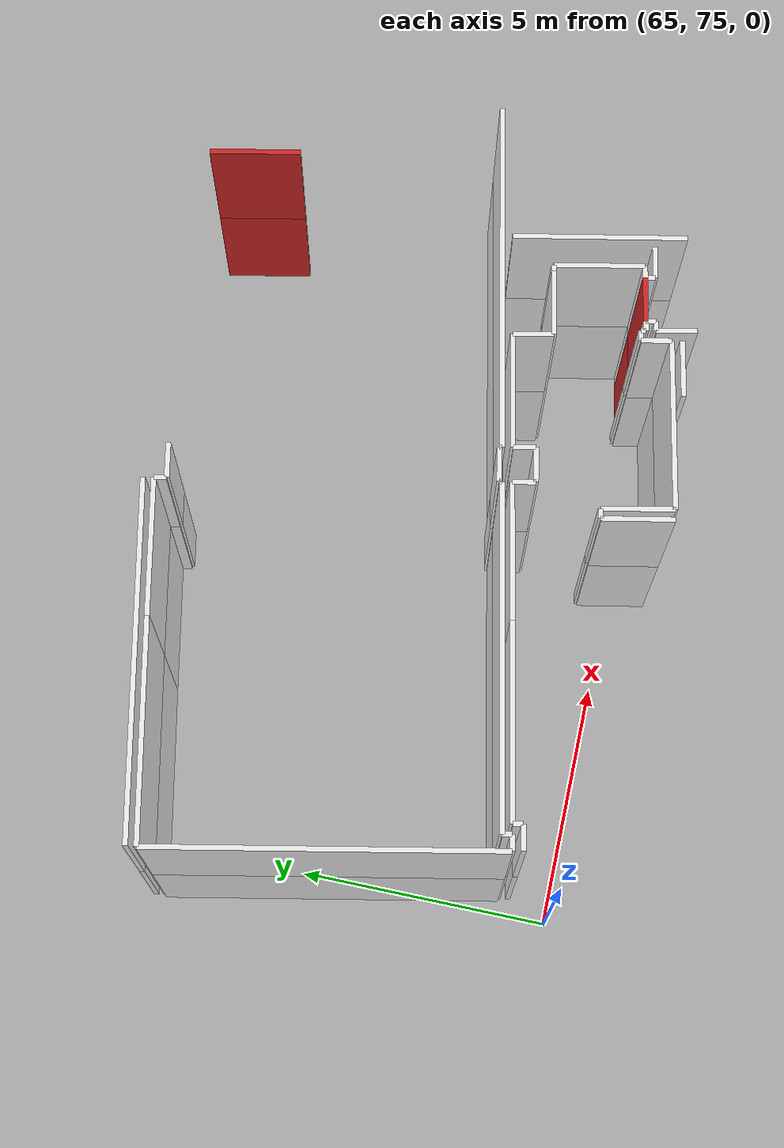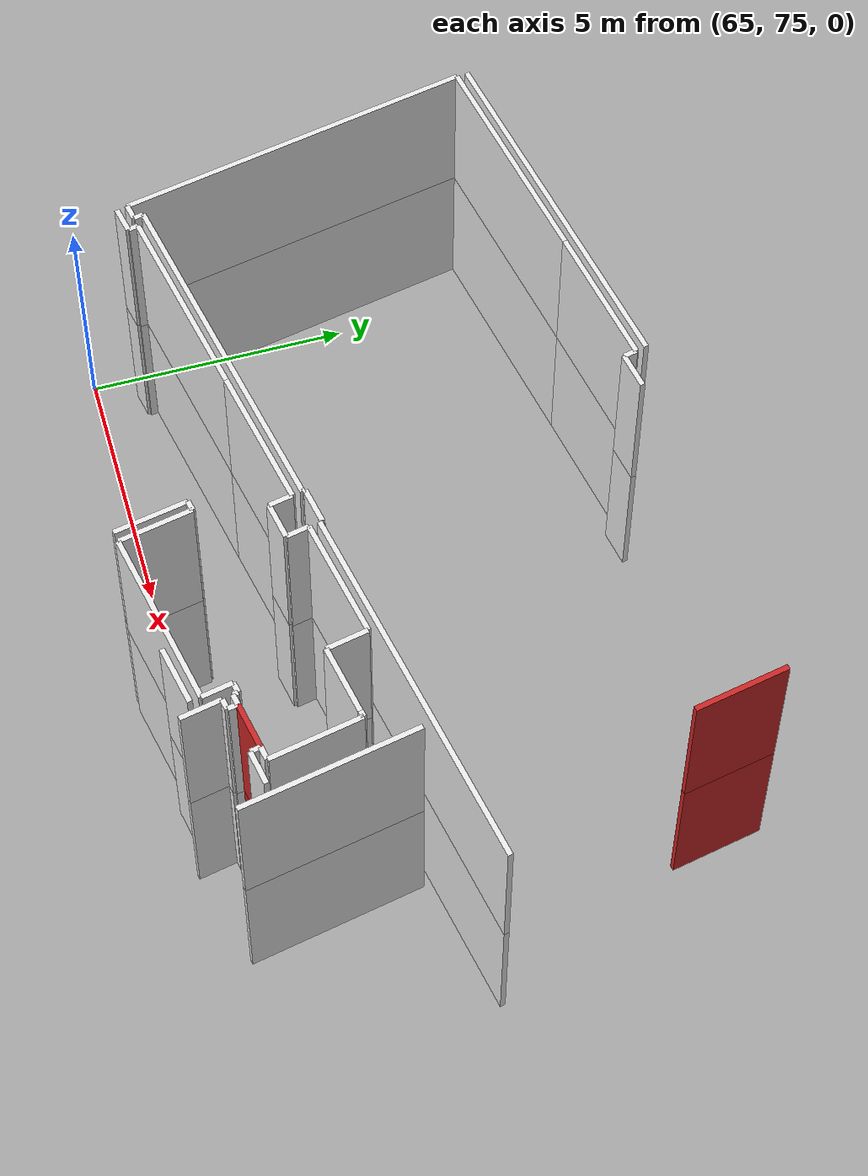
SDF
<sdf version="1.6">
 <world name="default">
  <model name="wall_77.9_83.7_1.5">
   <static>true</static>
   <pose>77.88500000000931 83.6699999999255 1.5 0 0 -1.3744936626731843</pose>
   <link name="link">
    <visual name="visual">
     <geometry><box><size>1.7944637079631676 0.1 3</size></box></geometry>
     <material>
      <script><uri>file://media/materials/scripts/gazebo.material</uri><name>Gazebo/Red</name></script>
     </material>
    </visual>
    <collision name="collision"><geometry><box><size>1.7944637079631676 0.1 3</size></box></geometry></collision>
   </link>
  </model>
  <model name="wall_76.4_75.6_1.5">
   <static>true</static>
   <pose>76.39000000001397 75.57500000018626 1.5 0 0 0.19083110263865674</pose>
   <link name="link">
    <visual name="visual">
     <geometry><box><size>0.8962700485807075 0.1 3</size></box></geometry>
     <material>
      <script><uri>file://media/materials/scripts/gazebo.material</uri><name>Gazebo/Red</name></script>
     </material>
    </visual>
    <collision name="collision"><geometry><box><size>0.8962700485807075 0.1 3</size></box></geometry></collision>
   </link>
  </model>
  <model name="wall_77.9_83.7_4.5">
   <static>true</static>
   <pose>77.88500000000931 83.6699999999255 4.5 0 0 -1.3744936626731843</pose>
   <link name="link">
    <visual name="visual">
     <geometry><box><size>1.7944637079631676 0.1 3</size></box></geometry>
     <material>
      <script><uri>file://media/materials/scripts/gazebo.material</uri><name>Gazebo/Red</name></script>
     </material>
    </visual>
    <collision name="collision"><geometry><box><size>1.7944637079631676 0.1 3</size></box></geometry></collision>
   </link>
  </model>
  <model name="wall_76.4_75.6_4.5">
   <static>true</static>
   <pose>76.39000000001397 75.57500000018626 4.5 0 0 0.19083110263865674</pose>
   <link name="link">
    <visual name="visual">
     <geometry><box><size>0.8962700485807075 0.1 3</size></box></geometry>
     <material>
      <script><uri>file://media/materials/scripts/gazebo.material</uri><name>Gazebo/Red</name></script>
     </material>
    </visual>
    <collision name="collision"><geometry><box><size>0.8962700485807075 0.1 3</size></box></geometry></collision>
   </link>
  </model>
  <model name="wall_77.5_76.7_1.5">
   <static>true</static>
   <pose>77.5 76.67500000004657 1.5 0 0 1.7653199818507113</pose>
   <link name="link">
    <visual name="visual">
     <geometry><box><size>3.414395993534876 0.1 3</size></box></geometry>
     <material>
      <script><uri>file://media/materials/scripts/gazebo.material</uri><name>Gazebo/White</name></script>
     </material>
    </visual>
    <collision name="collision"><geometry><box><size>3.414395993534876 0.1 3</size></box></geometry></collision>
   </link>
  </model>
  <model name="wall_67.4_83.5_1.5">
   <static>true</static>
   <pose>67.40499999999884 83.54000000003725 1.5 0 0 0.1954353271778743</pose>
   <link name="link">
    <visual name="visual">
     <geometry><box><size>7.003320641070759 0.1 3</size></box></geometry>
     <material>
      <script><uri>file://media/materials/scripts/gazebo.material</uri><name>Gazebo/White</name></script>
     </material>
    </visual>
    <collision name="collision"><geometry><box><size>7.003320641070759 0.1 3</size></box></geometry></collision>
   </link>
  </model>
  <model name="wall_71.3_83.8_1.5">
   <static>true</static>
   <pose>71.26999999998952 83.84499999997206 1.5 0 0 -2.9526954722081817</pose>
   <link name="link">
    <visual name="visual">
     <geometry><box><size>0.6923149572864328 0.1 3</size></box></geometry>
     <material>
      <script><uri>file://media/materials/scripts/gazebo.material</uri><name>Gazebo/White</name></script>
     </material>
    </visual>
    <collision name="collision"><geometry><box><size>0.6923149572864328 0.1 3</size></box></geometry></collision>
   </link>
  </model>
  <model name="wall_70.9_83.9_1.5">
   <static>true</static>
   <pose>70.90499999999884 83.89999999990687 1.5 0 0 1.7761917157522207</pose>
   <link name="link">
    <visual name="visual">
     <geometry><box><size>0.24515301365907008 0.1 3</size></box></geometry>
     <material>
      <script><uri>file://media/materials/scripts/gazebo.material</uri><name>Gazebo/White</name></script>
     </material>
    </visual>
    <collision name="collision"><geometry><box><size>0.24515301365907008 0.1 3</size></box></geometry></collision>
   </link>
  </model>
  <model name="wall_69.5_83.8_1.5">
   <static>true</static>
   <pose>69.54999999998836 83.76000000000931 1.5 0 0 -2.948538600466728</pose>
   <link name="link">
    <visual name="visual">
     <geometry><box><size>2.7103505308710134 0.1 3</size></box></geometry>
     <material>
      <script><uri>file://media/materials/scripts/gazebo.material</uri><name>Gazebo/White</name></script>
     </material>
    </visual>
    <collision name="collision"><geometry><box><size>2.7103505308710134 0.1 3</size></box></geometry></collision>
   </link>
  </model>
  <model name="wall_66.1_83.1_1.5">
   <static>true</static>
   <pose>66.10999999998603 83.0800000000745 1.5 0 0 -2.9451086705483704</pose>
   <link name="link">
    <visual name="visual">
     <geometry><box><size>4.30278979262453 0.1 3</size></box></geometry>
     <material>
      <script><uri>file://media/materials/scripts/gazebo.material</uri><name>Gazebo/White</name></script>
     </material>
    </visual>
    <collision name="collision"><geometry><box><size>4.30278979262453 0.1 3</size></box></geometry></collision>
   </link>
  </model>
  <model name="wall_64.7_79.3_1.5">
   <static>true</static>
   <pose>64.66500000000815 79.34000000008382 1.5 0 0 -1.3731111637109774</pose>
   <link name="link">
    <visual name="visual">
     <geometry><box><size>6.771890430431879 0.1 3</size></box></geometry>
     <material>
      <script><uri>file://media/materials/scripts/gazebo.material</uri><name>Gazebo/White</name></script>
     </material>
    </visual>
    <collision name="collision"><geometry><box><size>6.771890430431879 0.1 3</size></box></geometry></collision>
   </link>
  </model>
  <model name="wall_65.5_76.1_1.5">
   <static>true</static>
   <pose>65.48000000001048 76.05000000004657 1.5 0 0 0.19739556003644376</pose>
   <link name="link">
    <visual name="visual">
     <geometry><box><size>0.30594117081511046 0.1 3</size></box></geometry>
     <material>
      <script><uri>file://media/materials/scripts/gazebo.material</uri><name>Gazebo/White</name></script>
     </material>
    </visual>
    <collision name="collision"><geometry><box><size>0.30594117081511046 0.1 3</size></box></geometry></collision>
   </link>
  </model>
  <model name="wall_65.6_76.2_1.5">
   <static>true</static>
   <pose>65.61000000001513 76.1699999999255 1.5 0 0 1.7894652729085172</pose>
   <link name="link">
    <visual name="visual">
     <geometry><box><size>0.18439088885038563 0.1 3</size></box></geometry>
     <material>
      <script><uri>file://media/materials/scripts/gazebo.material</uri><name>Gazebo/White</name></script>
     </material>
    </visual>
    <collision name="collision"><geometry><box><size>0.18439088885038563 0.1 3</size></box></geometry></collision>
   </link>
  </model>
  <model name="wall_68.9_76.9_1.5">
   <static>true</static>
   <pose>68.88000000000466 76.91499999980442 1.5 0 0 0.19651862351580723</pose>
   <link name="link">
    <visual name="visual">
     <geometry><box><size>6.709135562767745 0.1 3</size></box></geometry>
     <material>
      <script><uri>file://media/materials/scripts/gazebo.material</uri><name>Gazebo/White</name></script>
     </material>
    </visual>
    <collision name="collision"><geometry><box><size>6.709135562767745 0.1 3</size></box></geometry></collision>
   </link>
  </model>
  <model name="wall_72.2_77.6_1.5">
   <static>true</static>
   <pose>72.16499999997905 77.59499999997206 1.5 0 0 1.7681918857492749</pose>
   <link name="link">
    <visual name="visual">
     <geometry><box><size>0.05099019541172539 0.1 3</size></box></geometry>
     <material>
      <script><uri>file://media/materials/scripts/gazebo.material</uri><name>Gazebo/White</name></script>
     </material>
    </visual>
    <collision name="collision"><geometry><box><size>0.05099019541172539 0.1 3</size></box></geometry></collision>
   </link>
  </model>
  <model name="wall_72.5_77.7_1.5">
   <static>true</static>
   <pose>72.5 77.68500000005588 1.5 0 0 0.18889718070517353</pose>
   <link name="link">
    <visual name="visual">
     <geometry><box><size>0.6923149572561651 0.1 3</size></box></geometry>
     <material>
      <script><uri>file://media/materials/scripts/gazebo.material</uri><name>Gazebo/White</name></script>
     </material>
    </visual>
    <collision name="collision"><geometry><box><size>0.6923149572561651 0.1 3</size></box></geometry></collision>
   </link>
  </model>
  <model name="wall_72.8_77.7_1.5">
   <static>true</static>
   <pose>72.84500000000116 77.72500000009313 1.5 0 0 -1.3734007671688915</pose>
   <link name="link">
    <visual name="visual">
     <geometry><box><size>0.05099019494369148 0.1 3</size></box></geometry>
     <material>
      <script><uri>file://media/materials/scripts/gazebo.material</uri><name>Gazebo/White</name></script>
     </material>
    </visual>
    <collision name="collision"><geometry><box><size>0.05099019494369148 0.1 3</size></box></geometry></collision>
   </link>
  </model>
  <model name="wall_76.3_78.4_1.5">
   <static>true</static>
   <pose>76.33999999999651 78.39000000013039 1.5 0 0 0.19519049174249012</pose>
   <link name="link">
    <visual name="visual">
     <geometry><box><size>7.115110680814747 0.1 3</size></box></geometry>
     <material>
      <script><uri>file://media/materials/scripts/gazebo.material</uri><name>Gazebo/White</name></script>
     </material>
    </visual>
    <collision name="collision"><geometry><box><size>7.115110680814747 0.1 3</size></box></geometry></collision>
   </link>
  </model>
  <model name="wall_72.0_74.9_1.5">
   <static>true</static>
   <pose>71.97500000000582 74.9199999999255 1.5 0 0 1.7640078106303387</pose>
   <link name="link">
    <visual name="visual">
     <geometry><box><size>1.4061649973136765 0.1 3</size></box></geometry>
     <material>
      <script><uri>file://media/materials/scripts/gazebo.material</uri><name>Gazebo/White</name></script>
     </material>
    </visual>
    <collision name="collision"><geometry><box><size>1.4061649973136765 0.1 3</size></box></geometry></collision>
   </link>
  </model>
  <model name="wall_71.9_75.6_1.5">
   <static>true</static>
   <pose>71.93500000002678 75.62999999988824 1.5 0 0 0.20749622662047904</pose>
   <link name="link">
    <visual name="visual">
     <geometry><box><size>0.19416487839942884 0.1 3</size></box></geometry>
     <material>
      <script><uri>file://media/materials/scripts/gazebo.material</uri><name>Gazebo/White</name></script>
     </material>
    </visual>
    <collision name="collision"><geometry><box><size>0.19416487839942884 0.1 3</size></box></geometry></collision>
   </link>
  </model>
  <model name="wall_72.2_75.0_1.5">
   <static>true</static>
   <pose>72.1700000000128 74.95999999996275 1.5 0 0 -1.3706152588342921</pose>
   <link name="link">
    <visual name="visual">
     <geometry><box><size>1.408119313011009 0.1 3</size></box></geometry>
     <material>
      <script><uri>file://media/materials/scripts/gazebo.material</uri><name>Gazebo/White</name></script>
     </material>
    </visual>
    <collision name="collision"><geometry><box><size>1.408119313011009 0.1 3</size></box></geometry></collision>
   </link>
  </model>
  <model name="wall_74.0_74.6_1.5">
   <static>true</static>
   <pose>73.98000000001048 74.60000000009313 1.5 0 0 0.19509141650355566</pose>
   <link name="link">
    <visual name="visual">
     <geometry><box><size>3.404585143650806 0.1 3</size></box></geometry>
     <material>
      <script><uri>file://media/materials/scripts/gazebo.material</uri><name>Gazebo/White</name></script>
     </material>
    </visual>
    <collision name="collision"><geometry><box><size>3.404585143650806 0.1 3</size></box></geometry></collision>
   </link>
  </model>
  <model name="wall_75.6_75.2_1.5">
   <static>true</static>
   <pose>75.59000000002561 75.21999999997206 1.5 0 0 1.7748143065135507</pose>
   <link name="link">
    <visual name="visual">
     <geometry><box><size>0.5922837154144474 0.1 3</size></box></geometry>
     <material>
      <script><uri>file://media/materials/scripts/gazebo.material</uri><name>Gazebo/White</name></script>
     </material>
    </visual>
    <collision name="collision"><geometry><box><size>0.5922837154144474 0.1 3</size></box></geometry></collision>
   </link>
  </model>
  <model name="wall_75.6_75.5_1.5">
   <static>true</static>
   <pose>75.63000000000466 75.52999999979511 1.5 0 0 0.1973955600737564</pose>
   <link name="link">
    <visual name="visual">
     <geometry><box><size>0.20396078050535543 0.1 3</size></box></geometry>
     <material>
      <script><uri>file://media/materials/scripts/gazebo.material</uri><name>Gazebo/White</name></script>
     </material>
    </visual>
    <collision name="collision"><geometry><box><size>0.20396078050535543 0.1 3</size></box></geometry></collision>
   </link>
  </model>
  <model name="wall_75.7_75.5_1.5">
   <static>true</static>
   <pose>75.73999999999069 75.5 1.5 0 0 -1.3734007660495133</pose>
   <link name="link">
    <visual name="visual">
     <geometry><box><size>0.10198038991021388 0.1 3</size></box></geometry>
     <material>
      <script><uri>file://media/materials/scripts/gazebo.material</uri><name>Gazebo/White</name></script>
     </material>
    </visual>
    <collision name="collision"><geometry><box><size>0.10198038991021388 0.1 3</size></box></geometry></collision>
   </link>
  </model>
  <model name="wall_75.9_75.5_1.5">
   <static>true</static>
   <pose>75.85000000000582 75.47000000020489 1.5 0 0 0.19739556001778746</pose>
   <link name="link">
    <visual name="visual">
     <geometry><box><size>0.20396078056243275 0.1 3</size></box></geometry>
     <material>
      <script><uri>file://media/materials/scripts/gazebo.material</uri><name>Gazebo/White</name></script>
     </material>
    </visual>
    <collision name="collision"><geometry><box><size>0.20396078056243275 0.1 3</size></box></geometry></collision>
   </link>
  </model>
  <model name="wall_77.0_75.7_1.5">
   <static>true</static>
   <pose>76.9550000000163 75.68500000005588 1.5 0 0 0.19739555913347878</pose>
   <link name="link">
    <visual name="visual">
     <geometry><box><size>0.25495097564310976 0.1 3</size></box></geometry>
     <material>
      <script><uri>file://media/materials/scripts/gazebo.material</uri><name>Gazebo/White</name></script>
     </material>
    </visual>
    <collision name="collision"><geometry><box><size>0.25495097564310976 0.1 3</size></box></geometry></collision>
   </link>
  </model>
  <model name="wall_76.9_76.6_1.5">
   <static>true</static>
   <pose>76.90499999999884 76.5800000000745 1.5 0 0 1.7692968585652145</pose>
   <link name="link">
    <visual name="visual">
     <geometry><box><size>1.774852106740809 0.1 3</size></box></geometry>
     <material>
      <script><uri>file://media/materials/scripts/gazebo.material</uri><name>Gazebo/White</name></script>
     </material>
    </visual>
    <collision name="collision"><geometry><box><size>1.774852106740809 0.1 3</size></box></geometry></collision>
   </link>
  </model>
  <model name="wall_76.7_77.4_1.5">
   <static>true</static>
   <pose>76.6699999999837 77.43500000005588 1.5 0 0 -2.896613988408541</pose>
   <link name="link">
    <visual name="visual">
     <geometry><box><size>0.12369316882725834 0.1 3</size></box></geometry>
     <material>
      <script><uri>file://media/materials/scripts/gazebo.material</uri><name>Gazebo/White</name></script>
     </material>
    </visual>
    <collision name="collision"><geometry><box><size>0.12369316882725834 0.1 3</size></box></geometry></collision>
   </link>
  </model>
  <model name="wall_76.0_77.3_1.5">
   <static>true</static>
   <pose>75.95999999999185 77.2949999999255 1.5 0 0 -2.9516043656694166</pose>
   <link name="link">
    <visual name="visual">
     <geometry><box><size>1.3238202294759405 0.1 3</size></box></geometry>
     <material>
      <script><uri>file://media/materials/scripts/gazebo.material</uri><name>Gazebo/White</name></script>
     </material>
    </visual>
    <collision name="collision"><geometry><box><size>1.3238202294759405 0.1 3</size></box></geometry></collision>
   </link>
  </model>
  <model name="wall_75.2_77.6_1.5">
   <static>true</static>
   <pose>75.23000000001048 77.56000000005588 1.5 0 0 1.7731179550758815</pose>
   <link name="link">
    <visual name="visual">
     <geometry><box><size>0.7962411697460803 0.1 3</size></box></geometry>
     <material>
      <script><uri>file://media/materials/scripts/gazebo.material</uri><name>Gazebo/White</name></script>
     </material>
    </visual>
    <collision name="collision"><geometry><box><size>0.7962411697460803 0.1 3</size></box></geometry></collision>
   </link>
  </model>
  <model name="wall_74.0_77.7_1.5">
   <static>true</static>
   <pose>74.02000000001863 77.72500000009313 1.5 0 0 -2.9450481572857363</pose>
   <link name="link">
    <visual name="visual">
     <geometry><box><size>2.3043654224557644 0.1 3</size></box></geometry>
     <material>
      <script><uri>file://media/materials/scripts/gazebo.material</uri><name>Gazebo/White</name></script>
     </material>
    </visual>
    <collision name="collision"><geometry><box><size>2.3043654224557644 0.1 3</size></box></geometry></collision>
   </link>
  </model>
  <model name="wall_72.9_77.3_1.5">
   <static>true</static>
   <pose>72.93499999999767 77.28499999991618 1.5 0 0 -1.364472432915976</pose>
   <link name="link">
    <visual name="visual">
     <geometry><box><size>0.4393176528871807 0.1 3</size></box></geometry>
     <material>
      <script><uri>file://media/materials/scripts/gazebo.material</uri><name>Gazebo/White</name></script>
     </material>
    </visual>
    <collision name="collision"><geometry><box><size>0.4393176528871807 0.1 3</size></box></geometry></collision>
   </link>
  </model>
  <model name="wall_72.6_77.0_1.5">
   <static>true</static>
   <pose>72.63499999998021 77.00499999988824 1.5 0 0 -2.9553698133356825</pose>
   <link name="link">
    <visual name="visual">
     <geometry><box><size>0.7021395872432744 0.1 3</size></box></geometry>
     <material>
      <script><uri>file://media/materials/scripts/gazebo.material</uri><name>Gazebo/White</name></script>
     </material>
    </visual>
    <collision name="collision"><geometry><box><size>0.7021395872432744 0.1 3</size></box></geometry></collision>
   </link>
  </model>
  <model name="wall_72.2_77.2_1.5">
   <static>true</static>
   <pose>72.24499999999534 77.15999999991618 1.5 0 0 1.77255867106901</pose>
   <link name="link">
    <visual name="visual">
     <geometry><box><size>0.44911023139643436 0.1 3</size></box></geometry>
     <material>
      <script><uri>file://media/materials/scripts/gazebo.material</uri><name>Gazebo/White</name></script>
     </material>
    </visual>
    <collision name="collision"><geometry><box><size>0.44911023139643436 0.1 3</size></box></geometry></collision>
   </link>
  </model>
  <model name="wall_70.9_77.1_1.5">
   <static>true</static>
   <pose>70.875 77.11499999999069 1.5 0 0 -2.9441970938159456</pose>
   <link name="link">
    <visual name="visual">
     <geometry><box><size>2.702480342186824 0.1 3</size></box></geometry>
     <material>
      <script><uri>file://media/materials/scripts/gazebo.material</uri><name>Gazebo/White</name></script>
     </material>
    </visual>
    <collision name="collision"><geometry><box><size>2.702480342186824 0.1 3</size></box></geometry></collision>
   </link>
  </model>
  <model name="wall_67.7_76.5_1.5">
   <static>true</static>
   <pose>67.68499999999767 76.47999999998137 1.5 0 0 -2.945744281719576</pose>
   <link name="link">
    <visual name="visual">
     <geometry><box><size>3.8026964117835984 0.1 3</size></box></geometry>
     <material>
      <script><uri>file://media/materials/scripts/gazebo.material</uri><name>Gazebo/White</name></script>
     </material>
    </visual>
    <collision name="collision"><geometry><box><size>3.8026964117835984 0.1 3</size></box></geometry></collision>
   </link>
  </model>
  <model name="wall_65.8_76.0_1.5">
   <static>true</static>
   <pose>65.83999999999651 76.01499999989755 1.5 0 0 -1.363300100406013</pose>
   <link name="link">
    <visual name="visual">
     <geometry><box><size>0.19416487833047835 0.1 3</size></box></geometry>
     <material>
      <script><uri>file://media/materials/scripts/gazebo.material</uri><name>Gazebo/White</name></script>
     </material>
    </visual>
    <collision name="collision"><geometry><box><size>0.19416487833047835 0.1 3</size></box></geometry></collision>
   </link>
  </model>
  <model name="wall_65.6_75.9_1.5">
   <static>true</static>
   <pose>65.61499999999069 75.86999999987893 1.5 0 0 -2.9402755450289626</pose>
   <link name="link">
    <visual name="visual">
     <geometry><box><size>0.5000999900114971 0.1 3</size></box></geometry>
     <material>
      <script><uri>file://media/materials/scripts/gazebo.material</uri><name>Gazebo/White</name></script>
     </material>
    </visual>
    <collision name="collision"><geometry><box><size>0.5000999900114971 0.1 3</size></box></geometry></collision>
   </link>
  </model>
  <model name="wall_75.1_74.6_1.5">
   <static>true</static>
   <pose>75.13500000000931 74.61999999987893 1.5 0 0 -2.945930194077732</pose>
   <link name="link">
    <visual name="visual">
     <geometry><box><size>1.131591799218755 0.1 3</size></box></geometry>
     <material>
      <script><uri>file://media/materials/scripts/gazebo.material</uri><name>Gazebo/White</name></script>
     </material>
    </visual>
    <collision name="collision"><geometry><box><size>1.131591799218755 0.1 3</size></box></geometry></collision>
   </link>
  </model>
  <model name="wall_76.0_75.4_1.5">
   <static>true</static>
   <pose>75.97000000000116 75.39500000001863 1.5 0 0 -1.3633001009000834</pose>
   <link name="link">
    <visual name="visual">
     <geometry><box><size>0.1941648787861511 0.1 3</size></box></geometry>
     <material>
      <script><uri>file://media/materials/scripts/gazebo.material</uri><name>Gazebo/White</name></script>
     </material>
    </visual>
    <collision name="collision"><geometry><box><size>0.1941648787861511 0.1 3</size></box></geometry></collision>
   </link>
  </model>
  <model name="wall_75.9_75.3_1.5">
   <static>true</static>
   <pose>75.88999999998487 75.27999999979511 1.5 0 0 -2.9441970935720057</pose>
   <link name="link">
    <visual name="visual">
     <geometry><box><size>0.20396078056243275 0.1 3</size></box></geometry>
     <material>
      <script><uri>file://media/materials/scripts/gazebo.material</uri><name>Gazebo/White</name></script>
     </material>
    </visual>
    <collision name="collision"><geometry><box><size>0.20396078056243275 0.1 3</size></box></geometry></collision>
   </link>
  </model>
  <model name="wall_75.9_74.9_1.5">
   <static>true</static>
   <pose>75.86999999999534 74.86999999987893 1.5 0 0 -1.3684746983247826</pose>
   <link name="link">
    <visual name="visual">
     <geometry><box><size>0.7962411693016136 0.1 3</size></box></geometry>
     <material>
      <script><uri>file://media/materials/scripts/gazebo.material</uri><name>Gazebo/White</name></script>
     </material>
    </visual>
    <collision name="collision"><geometry><box><size>0.7962411693016136 0.1 3</size></box></geometry></collision>
   </link>
  </model>
  <model name="wall_77.2_75.5_1.5">
   <static>true</static>
   <pose>77.19000000000233 75.53000000002794 1.5 0 0 -2.956244704132245</pose>
   <link name="link">
    <visual name="visual">
     <geometry><box><size>0.6511528237924986 0.1 3</size></box></geometry>
     <material>
      <script><uri>file://media/materials/scripts/gazebo.material</uri><name>Gazebo/White</name></script>
     </material>
    </visual>
    <collision name="collision"><geometry><box><size>0.6511528237924986 0.1 3</size></box></geometry></collision>
   </link>
  </model>
  <model name="wall_76.9_75.6_1.5">
   <static>true</static>
   <pose>76.85000000000582 75.56500000017695 1.5 0 0 1.77829255318378</pose>
   <link name="link">
    <visual name="visual">
     <geometry><box><size>0.19416487833047835 0.1 3</size></box></geometry>
     <material>
      <script><uri>file://media/materials/scripts/gazebo.material</uri><name>Gazebo/White</name></script>
     </material>
    </visual>
    <collision name="collision"><geometry><box><size>0.19416487833047835 0.1 3</size></box></geometry></collision>
   </link>
  </model>
  <model name="wall_77.5_76.7_4.5">
   <static>true</static>
   <pose>77.5 76.67500000004657 4.5 0 0 1.7653199818507113</pose>
   <link name="link">
    <visual name="visual">
     <geometry><box><size>3.414395993534876 0.1 3</size></box></geometry>
     <material>
      <script><uri>file://media/materials/scripts/gazebo.material</uri><name>Gazebo/White</name></script>
     </material>
    </visual>
    <collision name="collision"><geometry><box><size>3.414395993534876 0.1 3</size></box></geometry></collision>
   </link>
  </model>
  <model name="wall_67.4_83.5_4.5">
   <static>true</static>
   <pose>67.40499999999884 83.54000000003725 4.5 0 0 0.1954353271778743</pose>
   <link name="link">
    <visual name="visual">
     <geometry><box><size>7.003320641070759 0.1 3</size></box></geometry>
     <material>
      <script><uri>file://media/materials/scripts/gazebo.material</uri><name>Gazebo/White</name></script>
     </material>
    </visual>
    <collision name="collision"><geometry><box><size>7.003320641070759 0.1 3</size></box></geometry></collision>
   </link>
  </model>
  <model name="wall_71.3_83.8_4.5">
   <static>true</static>
   <pose>71.26999999998952 83.84499999997206 4.5 0 0 -2.9526954722081817</pose>
   <link name="link">
    <visual name="visual">
     <geometry><box><size>0.6923149572864328 0.1 3</size></box></geometry>
     <material>
      <script><uri>file://media/materials/scripts/gazebo.material</uri><name>Gazebo/White</name></script>
     </material>
    </visual>
    <collision name="collision"><geometry><box><size>0.6923149572864328 0.1 3</size></box></geometry></collision>
   </link>
  </model>
  <model name="wall_70.9_83.9_4.5">
   <static>true</static>
   <pose>70.90499999999884 83.89999999990687 4.5 0 0 1.7761917157522207</pose>
   <link name="link">
    <visual name="visual">
     <geometry><box><size>0.24515301365907008 0.1 3</size></box></geometry>
     <material>
      <script><uri>file://media/materials/scripts/gazebo.material</uri><name>Gazebo/White</name></script>
     </material>
    </visual>
    <collision name="collision"><geometry><box><size>0.24515301365907008 0.1 3</size></box></geometry></collision>
   </link>
  </model>
  <model name="wall_69.5_83.8_4.5">
   <static>true</static>
   <pose>69.54999999998836 83.76000000000931 4.5 0 0 -2.948538600466728</pose>
   <link name="link">
    <visual name="visual">
     <geometry><box><size>2.7103505308710134 0.1 3</size></box></geometry>
     <material>
      <script><uri>file://media/materials/scripts/gazebo.material</uri><name>Gazebo/White</name></script>
     </material>
    </visual>
    <collision name="collision"><geometry><box><size>2.7103505308710134 0.1 3</size></box></geometry></collision>
   </link>
  </model>
  <model name="wall_66.1_83.1_4.5">
   <static>true</static>
   <pose>66.10999999998603 83.0800000000745 4.5 0 0 -2.9451086705483704</pose>
   <link name="link">
    <visual name="visual">
     <geometry><box><size>4.30278979262453 0.1 3</size></box></geometry>
     <material>
      <script><uri>file://media/materials/scripts/gazebo.material</uri><name>Gazebo/White</name></script>
     </material>
    </visual>
    <collision name="collision"><geometry><box><size>4.30278979262453 0.1 3</size></box></geometry></collision>
   </link>
  </model>
  <model name="wall_64.7_79.3_4.5">
   <static>true</static>
   <pose>64.66500000000815 79.34000000008382 4.5 0 0 -1.3731111637109774</pose>
   <link name="link">
    <visual name="visual">
     <geometry><box><size>6.771890430431879 0.1 3</size></box></geometry>
     <material>
      <script><uri>file://media/materials/scripts/gazebo.material</uri><name>Gazebo/White</name></script>
     </material>
    </visual>
    <collision name="collision"><geometry><box><size>6.771890430431879 0.1 3</size></box></geometry></collision>
   </link>
  </model>
  <model name="wall_65.5_76.1_4.5">
   <static>true</static>
   <pose>65.48000000001048 76.05000000004657 4.5 0 0 0.19739556003644376</pose>
   <link name="link">
    <visual name="visual">
     <geometry><box><size>0.30594117081511046 0.1 3</size></box></geometry>
     <material>
      <script><uri>file://media/materials/scripts/gazebo.material</uri><name>Gazebo/White</name></script>
     </material>
    </visual>
    <collision name="collision"><geometry><box><size>0.30594117081511046 0.1 3</size></box></geometry></collision>
   </link>
  </model>
  <model name="wall_65.6_76.2_4.5">
   <static>true</static>
   <pose>65.61000000001513 76.1699999999255 4.5 0 0 1.7894652729085172</pose>
   <link name="link">
    <visual name="visual">
     <geometry><box><size>0.18439088885038563 0.1 3</size></box></geometry>
     <material>
      <script><uri>file://media/materials/scripts/gazebo.material</uri><name>Gazebo/White</name></script>
     </material>
    </visual>
    <collision name="collision"><geometry><box><size>0.18439088885038563 0.1 3</size></box></geometry></collision>
   </link>
  </model>
  <model name="wall_68.9_76.9_4.5">
   <static>true</static>
   <pose>68.88000000000466 76.91499999980442 4.5 0 0 0.19651862351580723</pose>
   <link name="link">
    <visual name="visual">
     <geometry><box><size>6.709135562767745 0.1 3</size></box></geometry>
     <material>
      <script><uri>file://media/materials/scripts/gazebo.material</uri><name>Gazebo/White</name></script>
     </material>
    </visual>
    <collision name="collision"><geometry><box><size>6.709135562767745 0.1 3</size></box></geometry></collision>
   </link>
  </model>
  <model name="wall_72.2_77.6_4.5">
   <static>true</static>
   <pose>72.16499999997905 77.59499999997206 4.5 0 0 1.7681918857492749</pose>
   <link name="link">
    <visual name="visual">
     <geometry><box><size>0.05099019541172539 0.1 3</size></box></geometry>
     <material>
      <script><uri>file://media/materials/scripts/gazebo.material</uri><name>Gazebo/White</name></script>
     </material>
    </visual>
    <collision name="collision"><geometry><box><size>0.05099019541172539 0.1 3</size></box></geometry></collision>
   </link>
  </model>
  <model name="wall_72.5_77.7_4.5">
   <static>true</static>
   <pose>72.5 77.68500000005588 4.5 0 0 0.18889718070517353</pose>
   <link name="link">
    <visual name="visual">
     <geometry><box><size>0.6923149572561651 0.1 3</size></box></geometry>
     <material>
      <script><uri>file://media/materials/scripts/gazebo.material</uri><name>Gazebo/White</name></script>
     </material>
    </visual>
    <collision name="collision"><geometry><box><size>0.6923149572561651 0.1 3</size></box></geometry></collision>
   </link>
  </model>
  <model name="wall_72.8_77.7_4.5">
   <static>true</static>
   <pose>72.84500000000116 77.72500000009313 4.5 0 0 -1.3734007671688915</pose>
   <link name="link">
    <visual name="visual">
     <geometry><box><size>0.05099019494369148 0.1 3</size></box></geometry>
     <material>
      <script><uri>file://media/materials/scripts/gazebo.material</uri><name>Gazebo/White</name></script>
     </material>
    </visual>
    <collision name="collision"><geometry><box><size>0.05099019494369148 0.1 3</size></box></geometry></collision>
   </link>
  </model>
  <model name="wall_76.3_78.4_4.5">
   <static>true</static>
   <pose>76.33999999999651 78.39000000013039 4.5 0 0 0.19519049174249012</pose>
   <link name="link">
    <visual name="visual">
     <geometry><box><size>7.115110680814747 0.1 3</size></box></geometry>
     <material>
      <script><uri>file://media/materials/scripts/gazebo.material</uri><name>Gazebo/White</name></script>
     </material>
    </visual>
    <collision name="collision"><geometry><box><size>7.115110680814747 0.1 3</size></box></geometry></collision>
   </link>
  </model>
  <model name="wall_72.0_74.9_4.5">
   <static>true</static>
   <pose>71.97500000000582 74.9199999999255 4.5 0 0 1.7640078106303387</pose>
   <link name="link">
    <visual name="visual">
     <geometry><box><size>1.4061649973136765 0.1 3</size></box></geometry>
     <material>
      <script><uri>file://media/materials/scripts/gazebo.material</uri><name>Gazebo/White</name></script>
     </material>
    </visual>
    <collision name="collision"><geometry><box><size>1.4061649973136765 0.1 3</size></box></geometry></collision>
   </link>
  </model>
  <model name="wall_71.9_75.6_4.5">
   <static>true</static>
   <pose>71.93500000002678 75.62999999988824 4.5 0 0 0.20749622662047904</pose>
   <link name="link">
    <visual name="visual">
     <geometry><box><size>0.19416487839942884 0.1 3</size></box></geometry>
     <material>
      <script><uri>file://media/materials/scripts/gazebo.material</uri><name>Gazebo/White</name></script>
     </material>
    </visual>
    <collision name="collision"><geometry><box><size>0.19416487839942884 0.1 3</size></box></geometry></collision>
   </link>
  </model>
  <model name="wall_72.2_75.0_4.5">
   <static>true</static>
   <pose>72.1700000000128 74.95999999996275 4.5 0 0 -1.3706152588342921</pose>
   <link name="link">
    <visual name="visual">
     <geometry><box><size>1.408119313011009 0.1 3</size></box></geometry>
     <material>
      <script><uri>file://media/materials/scripts/gazebo.material</uri><name>Gazebo/White</name></script>
     </material>
    </visual>
    <collision name="collision"><geometry><box><size>1.408119313011009 0.1 3</size></box></geometry></collision>
   </link>
  </model>
  <model name="wall_74.0_74.6_4.5">
   <static>true</static>
   <pose>73.98000000001048 74.60000000009313 4.5 0 0 0.19509141650355566</pose>
   <link name="link">
    <visual name="visual">
     <geometry><box><size>3.404585143650806 0.1 3</size></box></geometry>
     <material>
      <script><uri>file://media/materials/scripts/gazebo.material</uri><name>Gazebo/White</name></script>
     </material>
    </visual>
    <collision name="collision"><geometry><box><size>3.404585143650806 0.1 3</size></box></geometry></collision>
   </link>
  </model>
  <model name="wall_75.6_75.2_4.5">
   <static>true</static>
   <pose>75.59000000002561 75.21999999997206 4.5 0 0 1.7748143065135507</pose>
   <link name="link">
    <visual name="visual">
     <geometry><box><size>0.5922837154144474 0.1 3</size></box></geometry>
     <material>
      <script><uri>file://media/materials/scripts/gazebo.material</uri><name>Gazebo/White</name></script>
     </material>
    </visual>
    <collision name="collision"><geometry><box><size>0.5922837154144474 0.1 3</size></box></geometry></collision>
   </link>
  </model>
  <model name="wall_75.6_75.5_4.5">
   <static>true</static>
   <pose>75.63000000000466 75.52999999979511 4.5 0 0 0.1973955600737564</pose>
   <link name="link">
    <visual name="visual">
     <geometry><box><size>0.20396078050535543 0.1 3</size></box></geometry>
     <material>
      <script><uri>file://media/materials/scripts/gazebo.material</uri><name>Gazebo/White</name></script>
     </material>
    </visual>
    <collision name="collision"><geometry><box><size>0.20396078050535543 0.1 3</size></box></geometry></collision>
   </link>
  </model>
  <model name="wall_75.7_75.5_4.5">
   <static>true</static>
   <pose>75.73999999999069 75.5 4.5 0 0 -1.3734007660495133</pose>
   <link name="link">
    <visual name="visual">
     <geometry><box><size>0.10198038991021388 0.1 3</size></box></geometry>
     <material>
      <script><uri>file://media/materials/scripts/gazebo.material</uri><name>Gazebo/White</name></script>
     </material>
    </visual>
    <collision name="collision"><geometry><box><size>0.10198038991021388 0.1 3</size></box></geometry></collision>
   </link>
  </model>
  <model name="wall_75.9_75.5_4.5">
   <static>true</static>
   <pose>75.85000000000582 75.47000000020489 4.5 0 0 0.19739556001778746</pose>
   <link name="link">
    <visual name="visual">
     <geometry><box><size>0.20396078056243275 0.1 3</size></box></geometry>
     <material>
      <script><uri>file://media/materials/scripts/gazebo.material</uri><name>Gazebo/White</name></script>
     </material>
    </visual>
    <collision name="collision"><geometry><box><size>0.20396078056243275 0.1 3</size></box></geometry></collision>
   </link>
  </model>
  <model name="wall_77.0_75.7_4.5">
   <static>true</static>
   <pose>76.9550000000163 75.68500000005588 4.5 0 0 0.19739555913347878</pose>
   <link name="link">
    <visual name="visual">
     <geometry><box><size>0.25495097564310976 0.1 3</size></box></geometry>
     <material>
      <script><uri>file://media/materials/scripts/gazebo.material</uri><name>Gazebo/White</name></script>
     </material>
    </visual>
    <collision name="collision"><geometry><box><size>0.25495097564310976 0.1 3</size></box></geometry></collision>
   </link>
  </model>
  <model name="wall_76.9_76.6_4.5">
   <static>true</static>
   <pose>76.90499999999884 76.5800000000745 4.5 0 0 1.7692968585652145</pose>
   <link name="link">
    <visual name="visual">
     <geometry><box><size>1.774852106740809 0.1 3</size></box></geometry>
     <material>
      <script><uri>file://media/materials/scripts/gazebo.material</uri><name>Gazebo/White</name></script>
     </material>
    </visual>
    <collision name="collision"><geometry><box><size>1.774852106740809 0.1 3</size></box></geometry></collision>
   </link>
  </model>
  <model name="wall_76.7_77.4_4.5">
   <static>true</static>
   <pose>76.6699999999837 77.43500000005588 4.5 0 0 -2.896613988408541</pose>
   <link name="link">
    <visual name="visual">
     <geometry><box><size>0.12369316882725834 0.1 3</size></box></geometry>
     <material>
      <script><uri>file://media/materials/scripts/gazebo.material</uri><name>Gazebo/White</name></script>
     </material>
    </visual>
    <collision name="collision"><geometry><box><size>0.12369316882725834 0.1 3</size></box></geometry></collision>
   </link>
  </model>
  <model name="wall_76.0_77.3_4.5">
   <static>true</static>
   <pose>75.95999999999185 77.2949999999255 4.5 0 0 -2.9516043656694166</pose>
   <link name="link">
    <visual name="visual">
     <geometry><box><size>1.3238202294759405 0.1 3</size></box></geometry>
     <material>
      <script><uri>file://media/materials/scripts/gazebo.material</uri><name>Gazebo/White</name></script>
     </material>
    </visual>
    <collision name="collision"><geometry><box><size>1.3238202294759405 0.1 3</size></box></geometry></collision>
   </link>
  </model>
  <model name="wall_75.2_77.6_4.5">
   <static>true</static>
   <pose>75.23000000001048 77.56000000005588 4.5 0 0 1.7731179550758815</pose>
   <link name="link">
    <visual name="visual">
     <geometry><box><size>0.7962411697460803 0.1 3</size></box></geometry>
     <material>
      <script><uri>file://media/materials/scripts/gazebo.material</uri><name>Gazebo/White</name></script>
     </material>
    </visual>
    <collision name="collision"><geometry><box><size>0.7962411697460803 0.1 3</size></box></geometry></collision>
   </link>
  </model>
  <model name="wall_74.0_77.7_4.5">
   <static>true</static>
   <pose>74.02000000001863 77.72500000009313 4.5 0 0 -2.9450481572857363</pose>
   <link name="link">
    <visual name="visual">
     <geometry><box><size>2.3043654224557644 0.1 3</size></box></geometry>
     <material>
      <script><uri>file://media/materials/scripts/gazebo.material</uri><name>Gazebo/White</name></script>
     </material>
    </visual>
    <collision name="collision"><geometry><box><size>2.3043654224557644 0.1 3</size></box></geometry></collision>
   </link>
  </model>
  <model name="wall_72.9_77.3_4.5">
   <static>true</static>
   <pose>72.93499999999767 77.28499999991618 4.5 0 0 -1.364472432915976</pose>
   <link name="link">
    <visual name="visual">
     <geometry><box><size>0.4393176528871807 0.1 3</size></box></geometry>
     <material>
      <script><uri>file://media/materials/scripts/gazebo.material</uri><name>Gazebo/White</name></script>
     </material>
    </visual>
    <collision name="collision"><geometry><box><size>0.4393176528871807 0.1 3</size></box></geometry></collision>
   </link>
  </model>
  <model name="wall_72.6_77.0_4.5">
   <static>true</static>
   <pose>72.63499999998021 77.00499999988824 4.5 0 0 -2.9553698133356825</pose>
   <link name="link">
    <visual name="visual">
     <geometry><box><size>0.7021395872432744 0.1 3</size></box></geometry>
     <material>
      <script><uri>file://media/materials/scripts/gazebo.material</uri><name>Gazebo/White</name></script>
     </material>
    </visual>
    <collision name="collision"><geometry><box><size>0.7021395872432744 0.1 3</size></box></geometry></collision>
   </link>
  </model>
  <model name="wall_72.2_77.2_4.5">
   <static>true</static>
   <pose>72.24499999999534 77.15999999991618 4.5 0 0 1.77255867106901</pose>
   <link name="link">
    <visual name="visual">
     <geometry><box><size>0.44911023139643436 0.1 3</size></box></geometry>
     <material>
      <script><uri>file://media/materials/scripts/gazebo.material</uri><name>Gazebo/White</name></script>
     </material>
    </visual>
    <collision name="collision"><geometry><box><size>0.44911023139643436 0.1 3</size></box></geometry></collision>
   </link>
  </model>
  <model name="wall_70.9_77.1_4.5">
   <static>true</static>
   <pose>70.875 77.11499999999069 4.5 0 0 -2.9441970938159456</pose>
   <link name="link">
    <visual name="visual">
     <geometry><box><size>2.702480342186824 0.1 3</size></box></geometry>
     <material>
      <script><uri>file://media/materials/scripts/gazebo.material</uri><name>Gazebo/White</name></script>
     </material>
    </visual>
    <collision name="collision"><geometry><box><size>2.702480342186824 0.1 3</size></box></geometry></collision>
   </link>
  </model>
  <model name="wall_67.7_76.5_4.5">
   <static>true</static>
   <pose>67.68499999999767 76.47999999998137 4.5 0 0 -2.945744281719576</pose>
   <link name="link">
    <visual name="visual">
     <geometry><box><size>3.8026964117835984 0.1 3</size></box></geometry>
     <material>
      <script><uri>file://media/materials/scripts/gazebo.material</uri><name>Gazebo/White</name></script>
     </material>
    </visual>
    <collision name="collision"><geometry><box><size>3.8026964117835984 0.1 3</size></box></geometry></collision>
   </link>
  </model>
  <model name="wall_65.8_76.0_4.5">
   <static>true</static>
   <pose>65.83999999999651 76.01499999989755 4.5 0 0 -1.363300100406013</pose>
   <link name="link">
    <visual name="visual">
     <geometry><box><size>0.19416487833047835 0.1 3</size></box></geometry>
     <material>
      <script><uri>file://media/materials/scripts/gazebo.material</uri><name>Gazebo/White</name></script>
     </material>
    </visual>
    <collision name="collision"><geometry><box><size>0.19416487833047835 0.1 3</size></box></geometry></collision>
   </link>
  </model>
  <model name="wall_65.6_75.9_4.5">
   <static>true</static>
   <pose>65.61499999999069 75.86999999987893 4.5 0 0 -2.9402755450289626</pose>
   <link name="link">
    <visual name="visual">
     <geometry><box><size>0.5000999900114971 0.1 3</size></box></geometry>
     <material>
      <script><uri>file://media/materials/scripts/gazebo.material</uri><name>Gazebo/White</name></script>
     </material>
    </visual>
    <collision name="collision"><geometry><box><size>0.5000999900114971 0.1 3</size></box></geometry></collision>
   </link>
  </model>
  <model name="wall_75.1_74.6_4.5">
   <static>true</static>
   <pose>75.13500000000931 74.61999999987893 4.5 0 0 -2.945930194077732</pose>
   <link name="link">
    <visual name="visual">
     <geometry><box><size>1.131591799218755 0.1 3</size></box></geometry>
     <material>
      <script><uri>file://media/materials/scripts/gazebo.material</uri><name>Gazebo/White</name></script>
     </material>
    </visual>
    <collision name="collision"><geometry><box><size>1.131591799218755 0.1 3</size></box></geometry></collision>
   </link>
  </model>
  <model name="wall_76.0_75.4_4.5">
   <static>true</static>
   <pose>75.97000000000116 75.39500000001863 4.5 0 0 -1.3633001009000834</pose>
   <link name="link">
    <visual name="visual">
     <geometry><box><size>0.1941648787861511 0.1 3</size></box></geometry>
     <material>
      <script><uri>file://media/materials/scripts/gazebo.material</uri><name>Gazebo/White</name></script>
     </material>
    </visual>
    <collision name="collision"><geometry><box><size>0.1941648787861511 0.1 3</size></box></geometry></collision>
   </link>
  </model>
  <model name="wall_75.9_75.3_4.5">
   <static>true</static>
   <pose>75.88999999998487 75.27999999979511 4.5 0 0 -2.9441970935720057</pose>
   <link name="link">
    <visual name="visual">
     <geometry><box><size>0.20396078056243275 0.1 3</size></box></geometry>
     <material>
      <script><uri>file://media/materials/scripts/gazebo.material</uri><name>Gazebo/White</name></script>
     </material>
    </visual>
    <collision name="collision"><geometry><box><size>0.20396078056243275 0.1 3</size></box></geometry></collision>
   </link>
  </model>
  <model name="wall_75.9_74.9_4.5">
   <static>true</static>
   <pose>75.86999999999534 74.86999999987893 4.5 0 0 -1.3684746983247826</pose>
   <link name="link">
    <visual name="visual">
     <geometry><box><size>0.7962411693016136 0.1 3</size></box></geometry>
     <material>
      <script><uri>file://media/materials/scripts/gazebo.material</uri><name>Gazebo/White</name></script>
     </material>
    </visual>
    <collision name="collision"><geometry><box><size>0.7962411693016136 0.1 3</size></box></geometry></collision>
   </link>
  </model>
  <model name="wall_77.2_75.5_4.5">
   <static>true</static>
   <pose>77.19000000000233 75.53000000002794 4.5 0 0 -2.956244704132245</pose>
   <link name="link">
    <visual name="visual">
     <geometry><box><size>0.6511528237924986 0.1 3</size></box></geometry>
     <material>
      <script><uri>file://media/materials/scripts/gazebo.material</uri><name>Gazebo/White</name></script>
     </material>
    </visual>
    <collision name="collision"><geometry><box><size>0.6511528237924986 0.1 3</size></box></geometry></collision>
   </link>
  </model>
  <model name="wall_76.9_75.6_4.5">
   <static>true</static>
   <pose>76.85000000000582 75.56500000017695 4.5 0 0 1.77829255318378</pose>
   <link name="link">
    <visual name="visual">
     <geometry><box><size>0.19416487833047835 0.1 3</size></box></geometry>
     <material>
      <script><uri>file://media/materials/scripts/gazebo.material</uri><name>Gazebo/White</name></script>
     </material>
    </visual>
    <collision name="collision"><geometry><box><size>0.19416487833047835 0.1 3</size></box></geometry></collision>
   </link>
  </model>
 </world>
</sdf>
